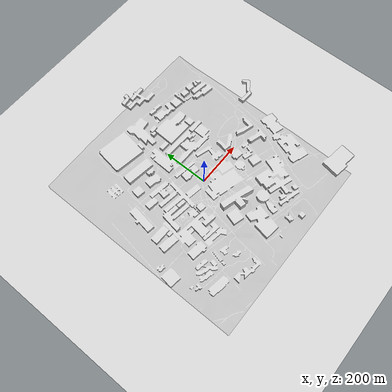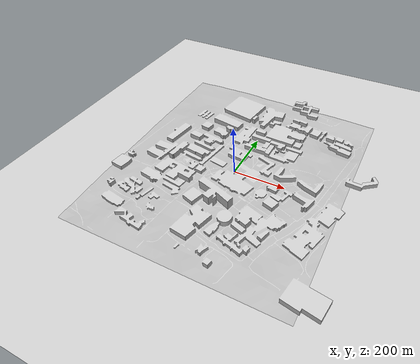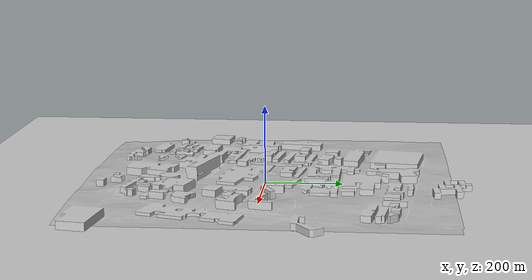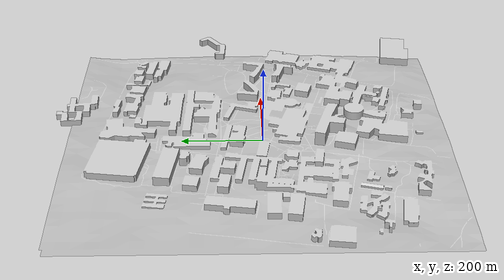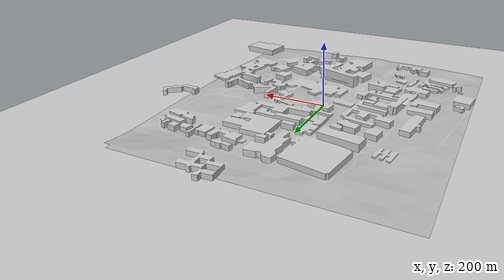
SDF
<sdf version='1.6'>
  <world name='default'>

    <!-- ********** World Properties ********** -->
    <light name='sun' type='directional'>
      <cast_shadows>1</cast_shadows>
      <pose frame=''>0 0 10 0 -0 0</pose>
      <diffuse>0.8 0.8 0.8 1</diffuse>
      <specular>0.2 0.2 0.2 1</specular>
      <attenuation>
        <range>1000</range>
        <constant>0.9</constant>
        <linear>0.01</linear>
        <quadratic>0.001</quadratic>
      </attenuation>
      <direction>-0.5 0.1 -0.9</direction>
    </light>
    <gravity>0 0 -9.8</gravity>
    <magnetic_field>6e-06 2.3e-05 -4.2e-05</magnetic_field>
    <atmosphere type='adiabatic'/>
    <physics name='default_physics' default='0' type='ode'>
      <max_step_size>0.001</max_step_size>
      <real_time_factor>1</real_time_factor>
      <real_time_update_rate>1000</real_time_update_rate>
    </physics>
    <scene>
      <ambient>0.4 0.4 0.4 1</ambient>
      <background>0.7 0.7 0.7 1</background>
      <shadows>0</shadows>
      <sky>
        <clouds>
          <speed>10</speed>
        </clouds>
      </sky>
      <grid>0</grid>
      <origin_visual>0</origin_visual>
    </scene>
    <audio>
      <device>default</device>
    </audio>
    <wind/>
    <spherical_coordinates>
      <surface_model>EARTH_WGS84</surface_model>
      <latitude_deg>0</latitude_deg>
      <longitude_deg>0</longitude_deg>
      <elevation>0</elevation>
      <heading_deg>0</heading_deg>
    </spherical_coordinates>

    <!-- ********** Models ********** -->
    <model name='ground_plane'>
      <static>1</static>
      <link name='link'>
        <collision name='collision'>
          <geometry>
            <plane>
              <normal>0 0 1</normal>
              <size>1100 1100</size>
            </plane>
          </geometry>
          <surface>
            <friction>
              <ode>
                <mu>100</mu>
                <mu2>50</mu2>
              </ode>
              <torsional>
                <ode/>
              </torsional>
            </friction>
            <contact>
              <ode/>
            </contact>
            <bounce/>
          </surface>
          <max_contacts>10</max_contacts>
        </collision>
        <visual name='visual'>
          <cast_shadows>0</cast_shadows>
          <geometry>
            <plane>
              <normal>0 0 1</normal>
              <size>1100 1100</size>
            </plane>
          </geometry>
          <material>
            <script>
              <uri>file://media/materials/scripts/gazebo.material</uri>
              <name>Gazebo/Grey</name>
            </script>
          </material>
        </visual>
        <self_collide>0</self_collide>
        <enable_wind>0</enable_wind>
        <kinematic>0</kinematic>
      </link>
    </model>

    <include>
      <name>campus</name>
      <uri>model://campus</uri>
      <pose>0 0 0 0 0 0</pose>
    </include>

    <gui fullscreen='0'>
      <camera name='user_camera'>
        <pose frame=''>75.1038 -38.4821 47.6239 0 0.543643 2.34419</pose>
        <view_controller>orbit</view_controller>
        <projection_type>perspective</projection_type>
      </camera>
    </gui>

  </world>
</sdf>

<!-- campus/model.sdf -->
<sdf version='1.6'>
  <model name="my_mesh">
      <pose>0 0 0  0 0 0</pose>
      <static>true</static>
      <link name="campus">
        <visual name="visual">
          <geometry>
            <mesh>
              <uri>model://campus/meshes/campus_paths.dae</uri>
            </mesh>
          </geometry>
        </visual>
      </link>
  </model>
</sdf>
